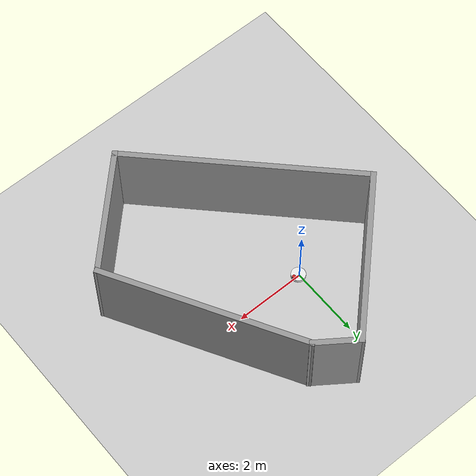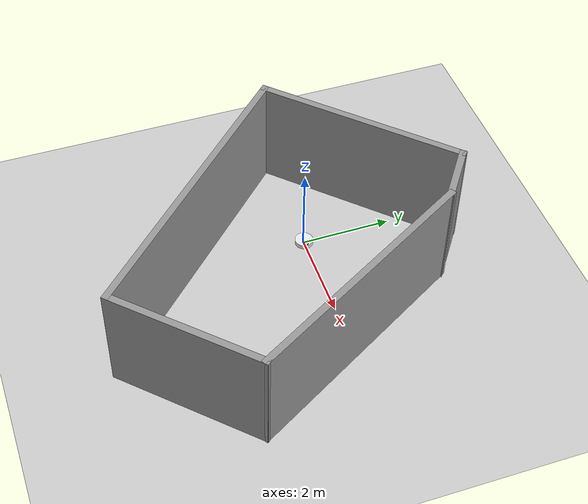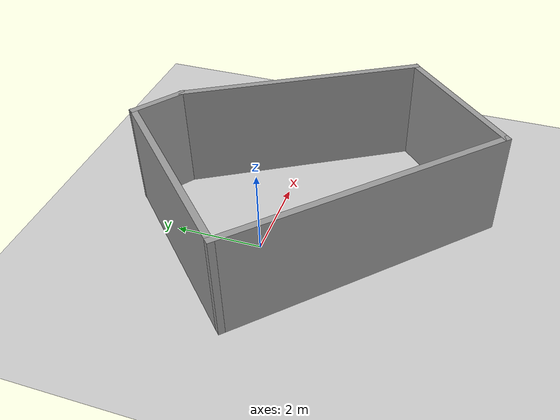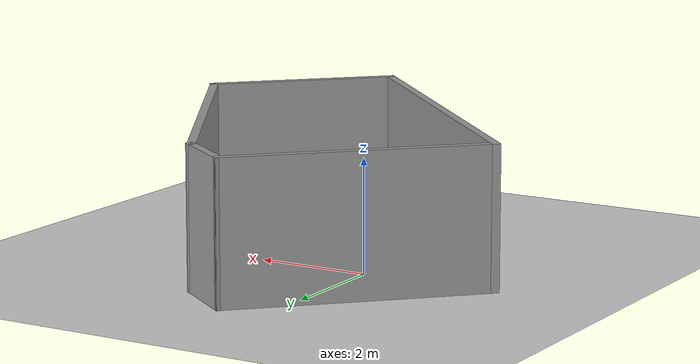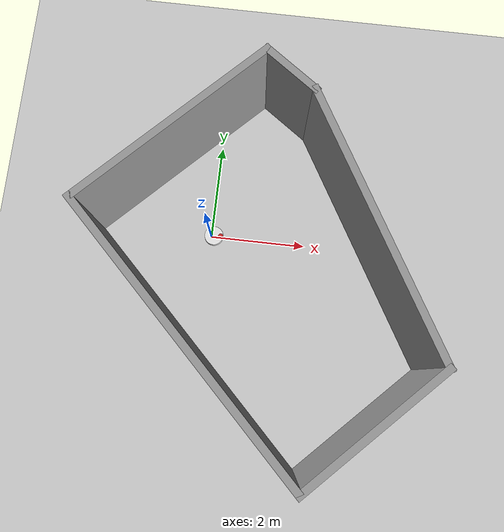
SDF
<sdf version="1.7">
 <world name="default">
  <light name="sun" type="directional">
   <pose>0 0 10 0 -0 0</pose>
   <diffuse>0.8 0.8 0.8 1</diffuse>
   <specular>0.2 0.2 0.2 1</specular>
   <attenuation>
    <range>1000</range>
    <constant>0.9</constant>
    <linear>0.01</linear>
    <quadratic>0.001</quadratic>
   </attenuation>
   <direction>-0.5 0.1 -0.9</direction>
   <spot><inner_angle>0</inner_angle><outer_angle>0</outer_angle><falloff>0</falloff></spot>
  </light>
  <model name="ground_plane">
   <static>1</static>
   <link name="link">
    <collision name="collision">
     <geometry><plane><normal>0 0 1</normal><size>100 100</size></plane></geometry>
     <surface><friction><ode><mu>100</mu><mu2>50</mu2></ode></friction></surface>
    </collision>
    <visual name="visual">
     <cast_shadows>0</cast_shadows>
     <geometry><plane><normal>0 0 1</normal><size>100 100</size></plane></geometry>
     <material>
      <script><uri>file://media/materials/scripts/gazebo.material</uri><name>Gazebo/Grey</name></script>
     </material>
    </visual>
   </link>
  </model>
  <gravity>0 0 -9.8</gravity>
  <magnetic_field>6e-06 2.3e-05 -4.2e-05</magnetic_field>
  <atmosphere type="adiabatic"/>
  <physics type="ode">
   <max_step_size>0.001</max_step_size>
   <real_time_factor>1</real_time_factor>
   <real_time_update_rate>1000</real_time_update_rate>
  </physics>
  <scene><ambient>0.4 0.4 0.4 1</ambient><background>0.7 0.7 0.7 1</background><shadows>1</shadows></scene>
  <spherical_coordinates>
   <surface_model>EARTH_WGS84</surface_model>
   <latitude_deg>0</latitude_deg>
   <longitude_deg>0</longitude_deg>
   <elevation>0</elevation>
   <heading_deg>0</heading_deg>
  </spherical_coordinates>
  <model name="ute-datn">
   <link name="base_link">
    <inertial>
     <pose>0.058491 0 0.049434 0 -0 0</pose>
     <mass>5.3</mass>
     <inertia>
      <ixx>0.0554308</ixx>
      <ixy>0</ixy>
      <ixz>0.000424528</ixz>
      <iyy>0.0617987</iyy>
      <iyz>0</iyz>
      <izz>0.106693</izz>
     </inertia>
    </inertial>
    <collision name="base_link_fixed_joint_lump__chassis_collision">
     <pose>0.05 0 0.05 0 -0 0</pose>
     <geometry><cylinder><length>0.1</length><radius>0.2</radius></cylinder></geometry>
    </collision>
    <collision name="base_link_fixed_joint_lump__caster_wheel_collision_1">
     <pose>0.2 0 0 0 -0 0</pose>
     <geometry><sphere><radius>0.05</radius></sphere></geometry>
     <surface><friction><ode><mu>0.001</mu><mu2>0.001</mu2></ode></friction></surface>
    </collision>
    <collision name="base_link_fixed_joint_lump__laser_frame_collision_2">
     <pose>0.2 0 0.12 0 -0 0</pose>
     <geometry><cylinder><length>0.04</length><radius>0.05</radius></cylinder></geometry>
    </collision>
    <visual name="base_link_fixed_joint_lump__chassis_visual">
     <pose>0.05 0 0.05 0 -0 0</pose>
     <geometry><cylinder><length>0.1</length><radius>0.2</radius></cylinder></geometry>
     <material>
      <script><name>Gazebo/White</name><uri>file://media/materials/scripts/gazebo.material</uri></script>
     </material>
    </visual>
    <visual name="base_link_fixed_joint_lump__caster_wheel_visual_1">
     <pose>0.2 0 0 0 -0 0</pose>
     <geometry><sphere><radius>0.05</radius></sphere></geometry>
     <material>
      <script><name>Gazebo/Black</name><uri>file://media/materials/scripts/gazebo.material</uri></script>
     </material>
    </visual>
    <visual name="base_link_fixed_joint_lump__laser_frame_visual_2">
     <pose>0.2 0 0.12 0 -0 0</pose>
     <geometry><cylinder><length>0.04</length><radius>0.05</radius></cylinder></geometry>
     <material>
      <script><name>Gazebo/Red</name><uri>file://media/materials/scripts/gazebo.material</uri></script>
     </material>
    </visual>
    <sensor name="laser" type="ray">
     <visualize>1</visualize>
     <update_rate>10</update_rate>
     <ray>
      <scan>
       <horizontal>
        <samples>360</samples>
        <min_angle>-3.14</min_angle>
        <max_angle>3.14</max_angle>
        <resolution>1</resolution>
       </horizontal>
       <vertical><samples>1</samples><min_angle>0</min_angle><max_angle>0</max_angle></vertical>
      </scan>
      <range><min>0.3</min><max>12</max></range>
     </ray>
     <plugin name="laser_controller" filename="libgazebo_ros_ray_sensor.so">
      <ros><argument>~/out:=scan</argument></ros>
      <output_type>sensor_msgs/LaserScan</output_type>
      <frame_name>laser_frame</frame_name>
     </plugin>
     <pose>0.2 0 0.12 0 -0 0</pose>
    </sensor>
   </link>
   <joint name="left_wheel_joint" type="revolute">
    <pose relative_to="base_link">0 0.15 0 -1.5708 0 0</pose>
    <parent>base_link</parent>
    <child>left_wheel</child>
    <axis>
     <xyz>0 0 1</xyz>
     <limit><lower>-1e+16</lower><upper>1e+16</upper></limit>
     <dynamics><spring_reference>0</spring_reference><spring_stiffness>0</spring_stiffness></dynamics>
    </axis>
   </joint>
   <link name="left_wheel">
    <pose relative_to="left_wheel_joint">0 0 0 0 -0 0</pose>
    <inertial>
     <mass>0.1</mass>
     <inertia>
      <ixx>7.58333e-05</ixx>
      <ixy>0</ixy>
      <ixz>0</ixz>
      <iyy>7.58333e-05</iyy>
      <iyz>0</iyz>
      <izz>0.000125</izz>
     </inertia>
    </inertial>
    <collision name="left_wheel_collision">
     <geometry><cylinder><length>0.04</length><radius>0.05</radius></cylinder></geometry>
    </collision>
    <visual name="left_wheel_visual">
     <geometry><cylinder><length>0.04</length><radius>0.05</radius></cylinder></geometry>
     <material>
      <script><name>Gazebo/Blue</name><uri>file://media/materials/scripts/gazebo.material</uri></script>
     </material>
    </visual>
   </link>
   <joint name="right_wheel_joint" type="revolute">
    <pose relative_to="base_link">0 -0.15 0 1.5708 -0 0</pose>
    <parent>base_link</parent>
    <child>right_wheel</child>
    <axis>
     <xyz>0 0 -1</xyz>
     <limit><lower>-1e+16</lower><upper>1e+16</upper></limit>
     <dynamics><spring_reference>0</spring_reference><spring_stiffness>0</spring_stiffness></dynamics>
    </axis>
   </joint>
   <link name="right_wheel">
    <pose relative_to="right_wheel_joint">0 0 0 0 -0 0</pose>
    <inertial>
     <mass>0.1</mass>
     <inertia>
      <ixx>7.58333e-05</ixx>
      <ixy>0</ixy>
      <ixz>0</ixz>
      <iyy>7.58333e-05</iyy>
      <iyz>0</iyz>
      <izz>0.000125</izz>
     </inertia>
    </inertial>
    <collision name="right_wheel_collision">
     <geometry><cylinder><length>0.04</length><radius>0.05</radius></cylinder></geometry>
    </collision>
    <visual name="right_wheel_visual">
     <geometry><cylinder><length>0.04</length><radius>0.05</radius></cylinder></geometry>
     <material>
      <script><name>Gazebo/Blue</name><uri>file://media/materials/scripts/gazebo.material</uri></script>
     </material>
    </visual>
   </link>
   <static>0</static>
   <plugin name="gazebo_ros2_control" filename="libgazebo_ros2_control.so">
    <parameters>/home/synguyen25/dev_ws/install/ute-datn/share/ute-datn/config/my_controllers.yaml</parameters>
    <parameters>/home/synguyen25/dev_ws/install/ute-datn/share/ute-datn/config/gaz_ros2_ctl_use_sim.yaml</parameters>
   </plugin>
   <pose>-0.001226 0.00085 0.049998 1e-06 -9e-06 -0.001834</pose>
  </model>
  <model name="cty">
   <pose>1.07983 -0.787444 0 0 -0 0</pose>
   <link name="Wall_1">
    <collision name="Wall_1_Collision">
     <geometry><box><size>5.75 0.15 2.5</size></box></geometry>
     <pose>0 0 1.25 0 -0 0</pose>
    </collision>
    <visual name="Wall_1_Visual">
     <pose>0 0 1.25 0 -0 0</pose>
     <geometry><box><size>5.75 0.15 2.5</size></box></geometry>
     <material>
      <script><uri>file://media/materials/scripts/gazebo.material</uri><name>Gazebo/Grey</name></script>
      <ambient>1 1 1 1</ambient>
     </material>
     <meta><layer>0</layer></meta>
    </visual>
    <pose>2.11786 0.833881 0 0 -0 -1.0472</pose>
   </link>
   <link name="Wall_2">
    <collision name="Wall_2_Collision">
     <geometry><box><size>3.5 0.15 2.5</size></box></geometry>
     <pose>0 0 1.25 0 -0 0</pose>
    </collision>
    <visual name="Wall_2_Visual">
     <pose>0 0 1.25 0 -0 0</pose>
     <geometry><box><size>3.5 0.15 2.5</size></box></geometry>
     <material>
      <script><uri>file://media/materials/scripts/gazebo.material</uri><name>Gazebo/Grey</name></script>
      <ambient>1 1 1 1</ambient>
     </material>
     <meta><layer>0</layer></meta>
    </visual>
    <pose>2.33345 -2.77539 0 0 -0 -2.35619</pose>
   </link>
   <link name="Wall_3">
    <collision name="Wall_3_Collision">
     <geometry><box><size>6.75 0.15 2.5</size></box></geometry>
     <pose>0 0 1.25 0 -0 0</pose>
    </collision>
    <visual name="Wall_3_Visual">
     <pose>0 0 1.25 0 -0 0</pose>
     <geometry><box><size>6.75 0.15 2.5</size></box></geometry>
     <material>
      <script><uri>file://media/materials/scripts/gazebo.material</uri><name>Gazebo/Grey</name></script>
      <ambient>1 1 1 1</ambient>
     </material>
     <meta><layer>0</layer></meta>
    </visual>
    <pose>-1.1844 -1.62634 0 0 -0 2.35619</pose>
   </link>
   <link name="Wall_4">
    <collision name="Wall_4_Collision">
     <geometry><box><size>4.75 0.15 2.5</size></box></geometry>
     <pose>0 0 1.25 0 -0 0</pose>
    </collision>
    <visual name="Wall_4_Visual">
     <pose>0 0 1.25 0 -0 0</pose>
     <geometry><box><size>4.75 0.15 2.5</size></box></geometry>
     <material>
      <script><uri>file://media/materials/scripts/gazebo.material</uri><name>Gazebo/Grey</name></script>
      <ambient>1 1 1 1</ambient>
     </material>
     <meta><layer>0</layer></meta>
    </visual>
    <pose>-1.89151 2.33345 0 0 -0 0.785398</pose>
   </link>
   <link name="Wall_5">
    <collision name="Wall_5_Collision">
     <geometry><box><size>1.35739 0.15 2.5</size></box></geometry>
     <pose>0 0 1.25 0 -0 0</pose>
    </collision>
    <visual name="Wall_5_Visual">
     <pose>0 0 1.25 0 -0 0</pose>
     <geometry><box><size>1.35739 0.15 2.5</size></box></geometry>
     <material>
      <script><uri>file://media/materials/scripts/gazebo.material</uri><name>Gazebo/Grey</name></script>
      <ambient>1 1 1 1</ambient>
     </material>
     <meta><layer>0</layer></meta>
    </visual>
    <pose>0.226346 3.60927 0 0 -0 -0.6195</pose>
   </link>
   <static>1</static>
  </model>
 </world>
</sdf>
